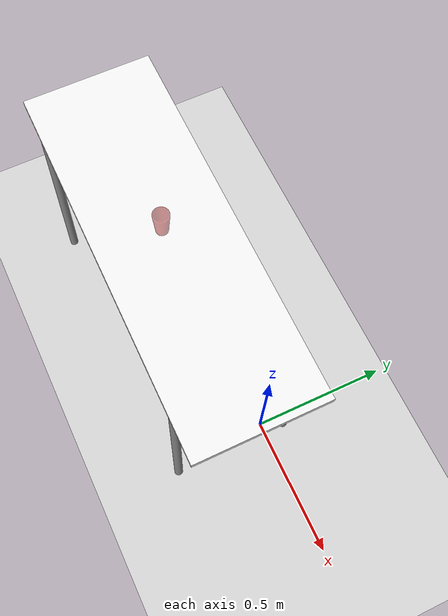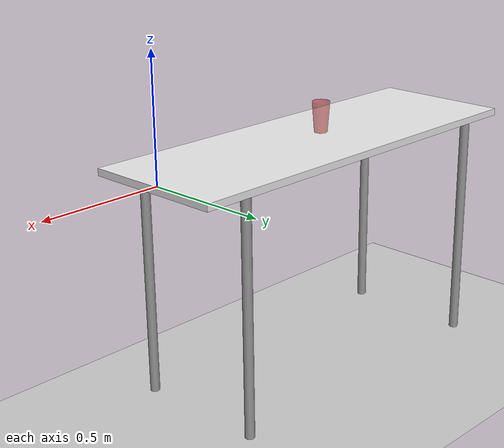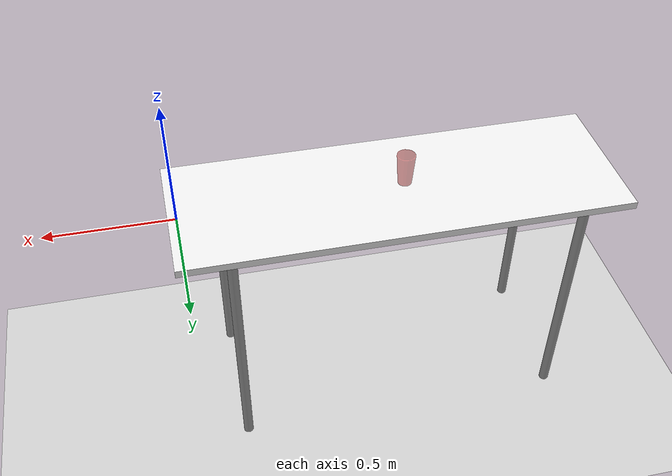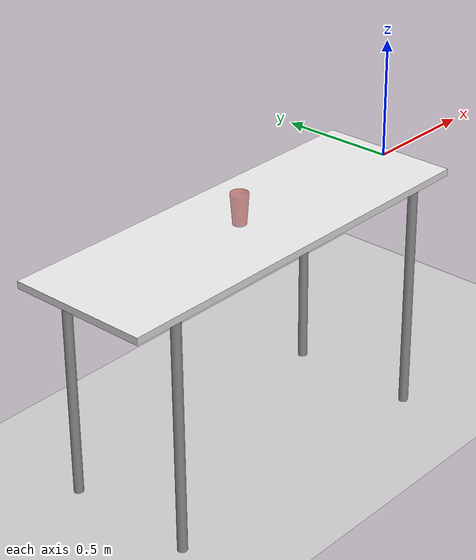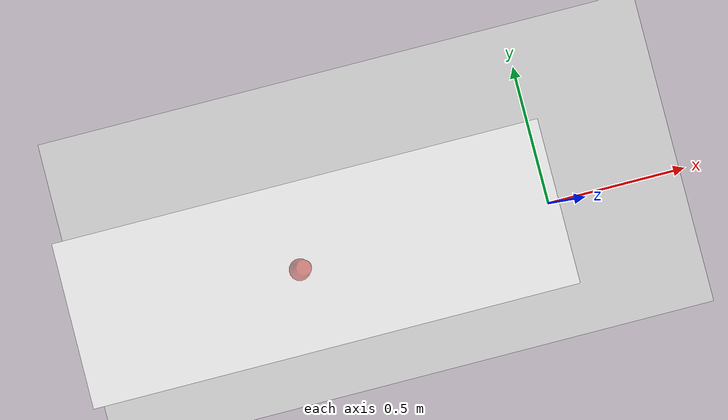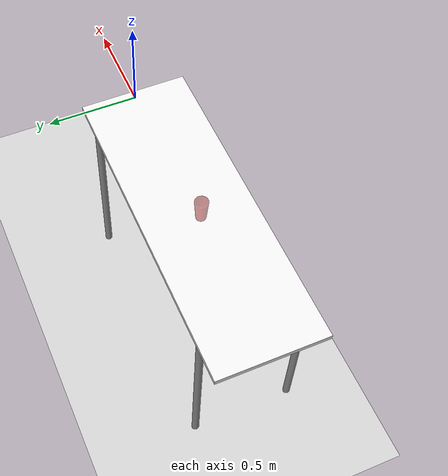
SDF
<?xml version="1.0" ?>
<sdf version="1.4">

  <world name="default">
    <include>
      <uri>model://ground_plane</uri>
      <pose>0 0 -1 0 0 0</pose>
    </include>

    <include>
      <uri>model://fable</uri>
      <pose>-.85 0 -1 0 0 0</pose>
    </include>

    <include>
      <uri>model://solo_cup</uri>
      <pose>-.9 0 .1 0 0 -2.06</pose>
    </include>

    <!-- Global light source -->
    <include>
      <uri>model://sun</uri>
    </include>

    <!-- Focus camera on tall pendulum -->
    <gui fullscreen='0'>
      <camera name='user_camera'>
        <pose>4.927360 -4.376610 3.740080 0.000000 0.275643 2.356190</pose>
        <view_controller>orbit</view_controller>
      </camera>
    </gui>

  </world>
</sdf>

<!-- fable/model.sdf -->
<sdf version="1.5">
  <model name="fable">
    <static>true</static>
    <link name="link">
      <collision name="surface">
        <pose>0 0 1.0 0 0 0</pose>
        <geometry>
          <box>
            <size>1.77 0.6 0.03</size>
          </box>
        </geometry>
        <surface>
          <friction>
            <ode>
              <mu>0.6</mu>
              <mu2>0.6</mu2>
            </ode>
          </friction>
        </surface>
      </collision>
      <visual name="visual1">
        <pose>0 0 1.0 0 0 0</pose>
        <geometry>
          <box>
            <size>1.77 0.6 0.03</size>
          </box>
        </geometry>
        <material>
          <script>
            <uri>file://media/materials/scripts/gazebo.material</uri>
            <name>Gazebo/White</name>
          </script>
        </material>
      </visual>
      <collision name="front_left_leg">
        <pose>0.58 0.28 0.5 0 0 0</pose>
        <geometry>
          <cylinder>
            <radius>0.02</radius>
            <length>1.0</length>
          </cylinder>
        </geometry>
      </collision>
      <visual name="front_left_leg">
        <pose>0.68 0.28 0.5 0 0 0</pose>
        <geometry>
          <cylinder>
            <radius>0.02</radius>
            <length>1.0</length>
          </cylinder>
        </geometry>
        <material>
          <script>
            <uri>file://media/materials/scripts/gazebo.material</uri>
            <name>Gazebo/Grey</name>
          </script>
        </material>
      </visual>
      <collision name="front_right_leg">
        <pose>0.68 -0.28 0.5 0 0 0</pose>
        <geometry>
          <cylinder>
            <radius>0.02</radius>
            <length>1.0</length>
          </cylinder>
        </geometry>
      </collision>
      <visual name="front_right_leg">
        <pose>0.68 -0.28 0.5 0 0 0</pose>
        <geometry>
          <cylinder>
            <radius>0.02</radius>
            <length>1.0</length>
          </cylinder>
        </geometry>
        <material>
          <script>
            <uri>file://media/materials/scripts/gazebo.material</uri>
            <name>Gazebo/Grey</name>
          </script>
        </material>
      </visual>
      <collision name="back_right_leg">
        <pose>-0.68 -0.28 0.5 0 0 0</pose>
        <geometry>
          <cylinder>
            <radius>0.02</radius>
            <length>1.0</length>
          </cylinder>
        </geometry>
      </collision>
      <visual name="back_right_leg">
        <pose>-0.68 -0.28 0.5 0 0 0</pose>
        <geometry>
          <cylinder>
            <radius>0.02</radius>
            <length>1.0</length>
          </cylinder>
        </geometry>
        <material>
          <script>
            <uri>file://media/materials/scripts/gazebo.material</uri>
            <name>Gazebo/Grey</name>
          </script>
        </material>
      </visual>
      <collision name="back_left_leg">
        <pose>-0.68 0.28 0.5 0 0 0</pose>
        <geometry>
          <cylinder>
            <radius>0.02</radius>
            <length>1.0</length>
          </cylinder>
        </geometry>
      </collision>
      <visual name="back_left_leg">
        <pose>-0.68 0.28 0.5 0 0 0</pose>
        <geometry>
          <cylinder>
            <radius>0.02</radius>
            <length>1.0</length>
          </cylinder>
        </geometry>
        <material>
          <script>
            <uri>file://media/materials/scripts/gazebo.material</uri>
            <name>Gazebo/Grey</name>
          </script>
        </material>
      </visual>
    </link>
  </model>
</sdf>

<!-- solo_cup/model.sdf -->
<sdf version="1.5">
  <model name="solo_cup">
    <link name="link">
      <pose>0 0 -.00542 0 0 0</pose>
      <inertial>
        <mass>0.0599</mass>
        <inertia>
          <ixx>0.0003028961527030333</ixx>
          <ixy>0</ixy>
          <ixz>0</ixz>
          <iyy>0.0003028961527030333</iyy>
          <iyz>0</iyz>
          <izz>3.2876352372798436e-05</izz>
        </inertia>
      </inertial>

      <collision name="collision">
        <geometry>
          <mesh>
            <uri>model://solo_cup/meshes/solo_cup.dae</uri>
          </mesh>
        </geometry>
        <surface>
          <contact>
            <!-- typical acrylic plastic material properties -->
            <poissons_ratio>0.35</poissons_ratio>
            <elastic_modulus>3.102640776e+09</elastic_modulus>
            <ode>
              <kp>100000</kp>
              <kd>100</kd>
              <max_vel>100.0</max_vel>
              <min_depth>0.001</min_depth>
            </ode>
          </contact>
          <friction>
            <torsional>
              <coefficient>1.0</coefficient>
              <use_patch_radius>0</use_patch_radius>
              <surface_radius>0.01</surface_radius>
            </torsional>
          </friction>
        </surface>
      </collision>

      <visual name="visual">
        <geometry>
          <mesh>
            <uri>model://solo_cup/meshes/solo_cup.dae</uri>
          </mesh>
        </geometry>
        <material>
          <script>
            <uri>file://media/materials/scripts/gazebo.material</uri>
            <name>Gazebo/RedTransparent</name>
          </script>
        </material>
      </visual>

    </link>
  </model>
</sdf>
